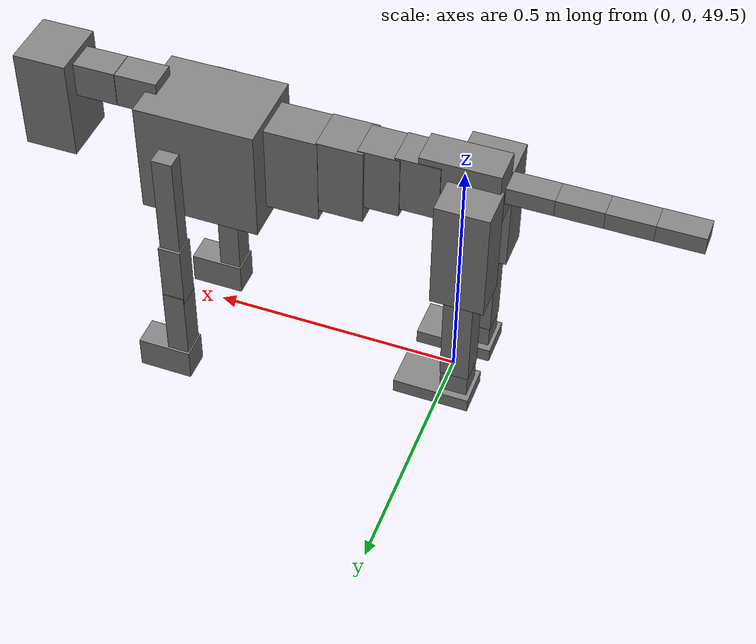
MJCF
<mujoco model="dog">

    <default>
        <joint armature="0.02" stiffness="1" damping="0.2" limited="true"/>
        <geom condim="3" friction="1 0.05 0.05" margin="0.01"/>
        <motor ctrllimited="true" ctrlrange="-1.0 1.0" forcelimited="true" gear="50"/>
    </default>

    <compiler inertiafromgeom="true" angle="radian"/>

    <option timestep="0.016" iterations="50" tolerance="1e-10" solver="Newton" jacobian="dense" cone="pyramidal"/>

    <size nconmax="20000" njmax="60000" nstack="5000000"/>
    <visual>
        <map force="0.1" zfar="30"/>
        <rgba haze="0.15 0.25 0.35 1"/>
        <quality shadowsize="2048"/>
        <global offwidth="800" offheight="800"/>
    </visual>

    <asset>
        <texture type="skybox" builtin="gradient" rgb1="0.3 0.5 0.7" rgb2="0 0 0" width="512" height="512"/>
        <texture name="texplane" type="2d" builtin="checker" rgb1=".2 .3 .4" rgb2=".1 0.15 0.2" width="512" height="512"
                 mark="cross" markrgb=".8 .8 .8"/>
        <texture name="texgeom" type="cube" builtin="flat" mark="cross" width="127" height="1278" rgb1="0.8 0.6 0.4"
                 rgb2="0.8 0.6 0.4" markrgb="1 1 1" random="0.01"/>

        <material name="matplane" reflectance="0.3" texture="texplane" texrepeat="1 1" texuniform="true"/>
        <material name="matgeom" texture="texgeom" texuniform="true" rgba="0.8 0.6 .4 1"/>
    </asset>

    <worldbody>
        <geom name="floor" pos="0 0 0" size="0 0 .25" type="plane" material="matplane" condim="3"/>

        <light directional="false" diffuse=".2 .2 .2" specular="0 0 0" pos="0 0 5" dir="0 0 -1" castshadow="false"/>
        <light mode="targetbodycom" target="torso" directional="false" diffuse=".8 .8 .8" specular="0.3 0.3 0.3"
               pos="0 0 4.0" dir="0 0 -1"/>

        <body name="root" pos="0 0 50">
            <freejoint name="root_1"/>
            <geom type="box" pos="0 0 -0.02" size="0.0774  0.0358  0.063" density="2030"/>

            <body name="spine1" pos="0.054 0 0">
                <joint name="spine1_y" axis="0 1 0" range="0 0.7" limited="true"/>
                <geom type="box" pos="0.02375 0 -0.03" size="0.04375  0.0375  0.05985" density="2030"/>

                <body name="spine2" pos="0.0612 0 0">
                    <joint name="spine2_y" axis="0 1 0" range="-0.15 0.15" limited="true"/>
                    <geom type="box" pos="0.03555  0  -0.04" size="0.04055  0.039  0.06615" density="2030"/>

                    <body name="spine3" pos="0.0730 0 0">
                        <joint name="spine3_y" axis="0 1 0" range="-0.15 0.15" limited="true"/>
                        <geom type="box" pos="0.03555  0  -0.057" size="0.04555  0.0445  0.081" density="2030"/>

                        <body name="spine4" pos="0.0780 0 0">
                            <joint name="spine4_y" axis="0 1 0" range="-0.15 0.15" limited="true"/>
                            <geom type="box" pos="0.05265  0  -0.07" size="0.05265  0.045  0.09135" density="2030"/>

                            <body name="torso" pos="0.1082 0 0">
                                <joint name="torso_y" axis="0 1 0" range="-0.15 0.15" limited="true"/>
                                <geom type="box" pos="0.11925  0  -0.085" size="0.11925  0.085  0.11745"
                                      density="2030"/>

                                <body name="neck1" pos="0.2160  0   0.0180">
                                    <joint name="neck1_y" axis="0 1 0" range="-1.2  -1" limited="true"/>
                                    <geom type="box" pos="0.0423  0  0" size="0.0423  0.03  0.036" density="2325"/>

                                    <body name="neck2" pos="0.0853  0  0">
                                        <joint name="neck2_y" axis="0 1 0" range="0.1  0" limited="true"/>
                                        <geom type="box" pos="0.0423  0  0" size="0.0423  0.03  0.036" density="2325"/>

                                        <body name="head" pos="0.0853  0  0">
                                            <joint name="head_y" axis="0 1 0" range="-0.3  -0.2" limited="true"/>
                                            <geom type="box" pos="0.0531  0  -0.055" size="0.0531  0.06  0.1044"
                                                  density="4030"/>

                                        </body>
                                    </body>
                                </body>

                                <body name="front_shoulder" pos="0.156  0   -0.0480">
                                    <joint name="front_shoulder_y" axis="0 1 0" range="-1 1.5" limited="true"/>
                                    <geom type="box" pos="0 0.13 -0.0953" size="0.0204  0.0174  0.1219" density="1158"/>
                                    <geom type="box" pos="0 -0.13 -0.0953" size="0.0204  0.0174  0.1219"
                                          density="1158"/>

                                    <body name="front_elbow" pos="0  0  -0.1906">
                                        <joint name="front_elbow_y" axis="0 1 0" range="-2 0" limited="true"/>
                                        <geom type="box" pos="0 0.13 -0.0679" size="0.0225  0.0230  0.0679"
                                              density="1081"/>
                                        <geom type="box" pos="0 -0.13 -0.0679" size="0.0225  0.0230  0.0679"
                                              density="1081"/>

                                        <body name="front_wrist" pos="0  0  -0.1357">
                                            <joint name="front_wrist_y" axis="0 1 0" range="-0.2 0" limited="true"/>
                                            <geom type="box" pos="0 0.13 -0.0762" size="0.0221  0.0246  0.0894"
                                                  density="1664"/>
                                            <geom type="box" pos="0 -0.13 -0.0762" size="0.0221  0.0246  0.0894"
                                                  density="1664"/>

                                            <body name="front_finger_end" pos="0  0  -0.1524">
                                                <joint name="front_finger_y" axis="0 1 0" range="-0.4 1"
                                                       limited="true"/>
                                                <geom type="box" pos="0.0297  0.13  -0.0185"
                                                      size="0.0545  0.0297  0.0335" density="1515"/>
                                                <geom type="box" pos="0.0297  -0.13  -0.0185"
                                                      size="0.0545  0.0297  0.0335" density="1515"/>

                                            </body>

                                        </body>
                                    </body>
                                </body>

                            </body>
                        </body>
                    </body>
                </body>
            </body>

            <body name="back_hip" pos="-0.03 0 -0.018">
                <joint name="back_hip_y" axis="0 1 0" range="-1.5 0.3" limited="true"/>
                <geom type="box" pos="0 0.07 -0.0926" size="0.0520  0.0408  0.1154" density="1154"/>
                <geom type="box" pos="0 -0.07 -0.0926" size="0.0520  0.0408  0.1154" density="1154"/>

                <body name="back_knee" pos="0  0  -0.1851">
                    <joint name="back_knee_y" axis="0 1 0" range="0 2.8" limited="true"/>
                    <geom type="box" pos="0 0.07 -0.1039" size="0.0284  0.0280  0.1195" density="1227"/>
                    <geom type="box" pos="0 -0.07 -0.1039" size="0.0284  0.0280  0.1195" density="1227"/>

                    <body name="back_ankle" pos="0  0  -0.2079">
                        <joint name="back_ankle_y" axis="0 1 0" range="-2.2 0" limited="true"/>
                        <geom type="box" pos="0 0.07 -0.0379" size="0.0271  0.0271  0.0491" density="1284"/>
                        <geom type="box" pos="0 -0.07 -0.0379" size="0.0271  0.0271  0.0491" density="1284"/>

                        <body name="back_toe_end" pos="0  0  -0.0757">
                            <joint name="back_toe_y" axis="0 1 0" range="-0.4 1" limited="true"/>
                            <geom type="box" pos="0.0414  0.07  0.0004" size="0.0759  0.0414  0.0146" density="1515"/>
                            <geom type="box" pos="0.0414  -0.07  0.0004" size="0.0759  0.0414  0.0146" density="1515"/>

                        </body>
                    </body>
                </body>
            </body>

            <body name="tail1" pos="-0.074 0 -0.006">
                <joint name="tail1_y" axis="0 1 0" range="-0.2 0.2" limited="true"/>
                <geom type="box" pos="-0.0536  0  0" size="0.045  0.025  0.0175" density="1587"/>

                <body name="tail2" pos="-0.09 0 0">
                    <joint name="tail2_y" axis="0 1 0" range="-0.2 0.2" limited="true"/>
                    <geom type="box" pos="-0.0536  0  0" size="0.045  0.025  0.0175" density="1587"/>

                    <body name="tail3" pos="-0.09 0 0">
                        <joint name="tail3_y" axis="0 1 0" range="-0.2 0.2" limited="true"/>
                        <geom type="box" pos="-0.0536  0  0" size="0.045  0.025  0.0175" density="1587"/>

                        <body name="tail4" pos="-0.09 0 0">
                            <joint name="tail4_y" axis="0 1 0" range="-0.2 0.2" limited="true"/>
                            <geom type="box" pos="-0.0536  0  0" size="0.045  0.025  0.0175" density="1587"/>

                        </body>
                    </body>
                </body>
            </body>
        </body>
    </worldbody>

    <actuator>
        <motor joint="spine1_y" forcerange="-150 150     "/>
        <motor joint="spine2_y" forcerange="-150 150     "/>
        <motor joint="spine3_y" forcerange="-150 150     "/>
        <motor joint="spine4_y" forcerange="-150 150     "/>
        <motor joint="torso_y" forcerange="-150 150     "/>
        <motor joint="neck1_y" forcerange="-100 100       "/>
        <motor joint="neck2_y" forcerange="-100 100       "/>
        <motor joint="head_y" forcerange="-150 150       "/>
        <motor joint="front_shoulder_y" forcerange="-103.40 112.65"/>
        <motor joint="front_elbow_y" forcerange="-123.02 144.21"/>
        <motor joint="front_wrist_y" forcerange="-89.31 107.30"/>
        <motor joint="front_finger_y" forcerange="-48.12 70.40"/>
        <motor joint="back_hip_y" forcerange="-392.37 351.42"/>
        <motor joint="back_knee_y" forcerange="-347.17 260.21"/>
        <motor joint="back_angle_y" forcerange="-214.38 119.85"/>
        <motor joint="back_toe_y" forcerange="-120.81 130.20"/>
        <motor joint="tail1_y" forcerange="-50 50     "/>
        <motor joint="tail2_y" forcerange="-50 50     "/>
        <motor joint="tail3_y" forcerange="-50 50     "/>
        <motor joint="tail4_y" forcerange="-50 50     "/>
    </actuator>
</mujoco>
